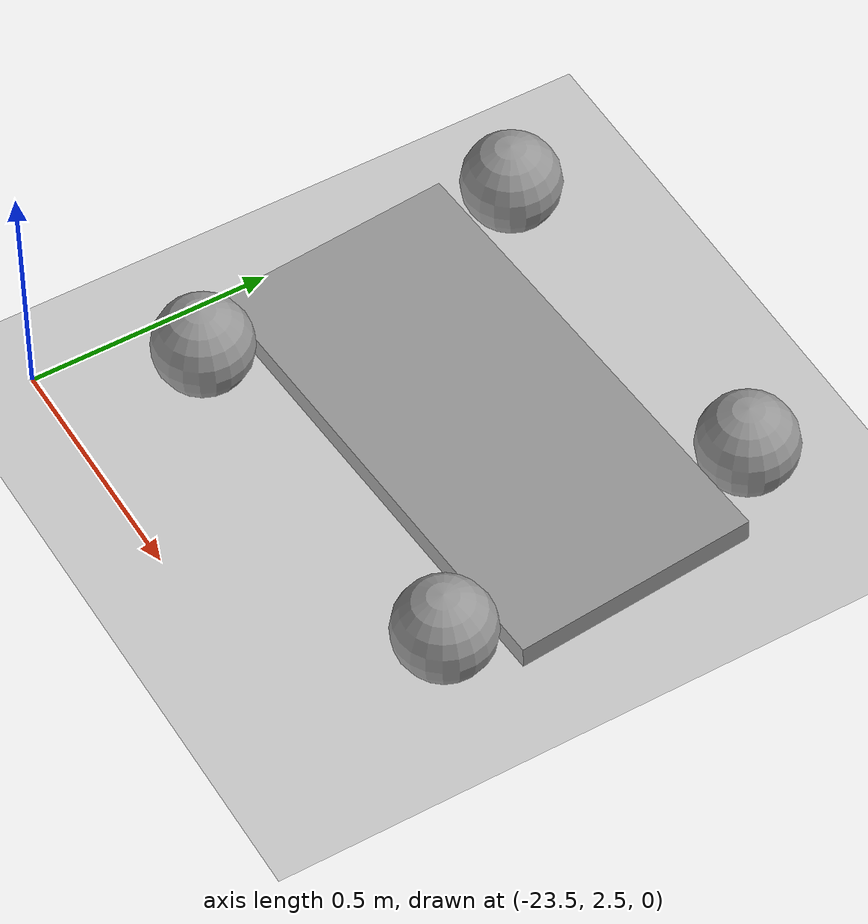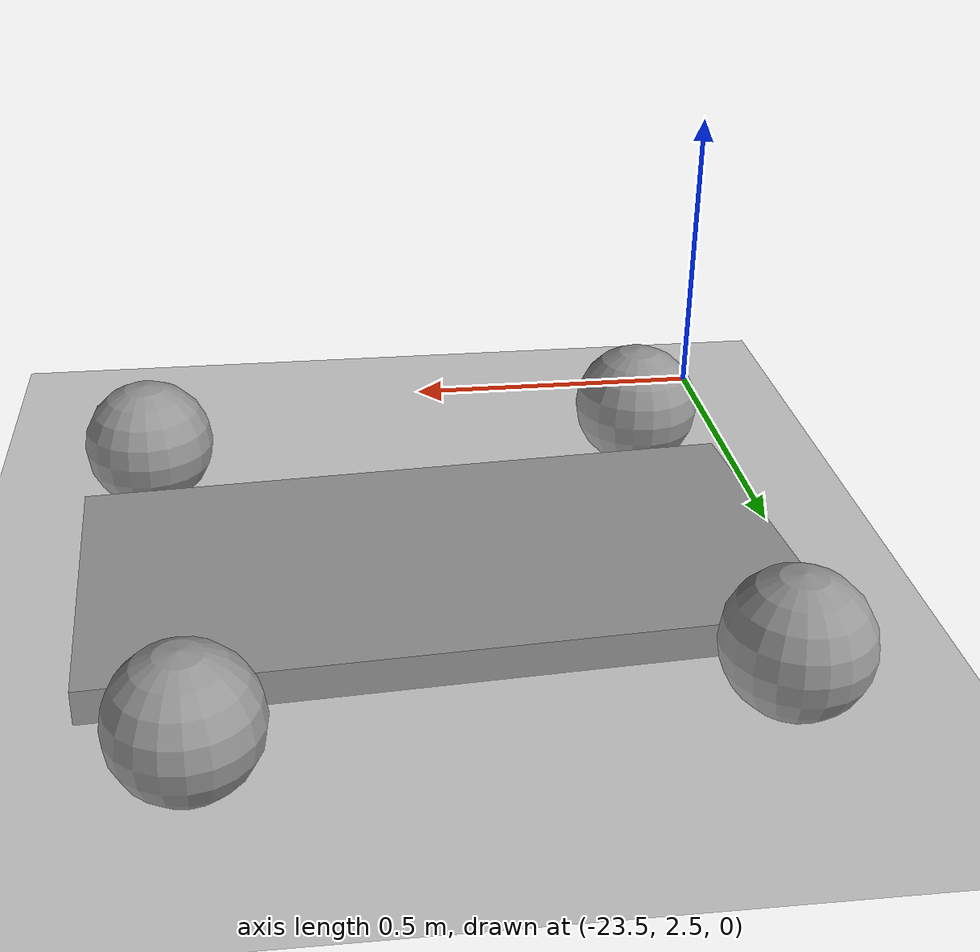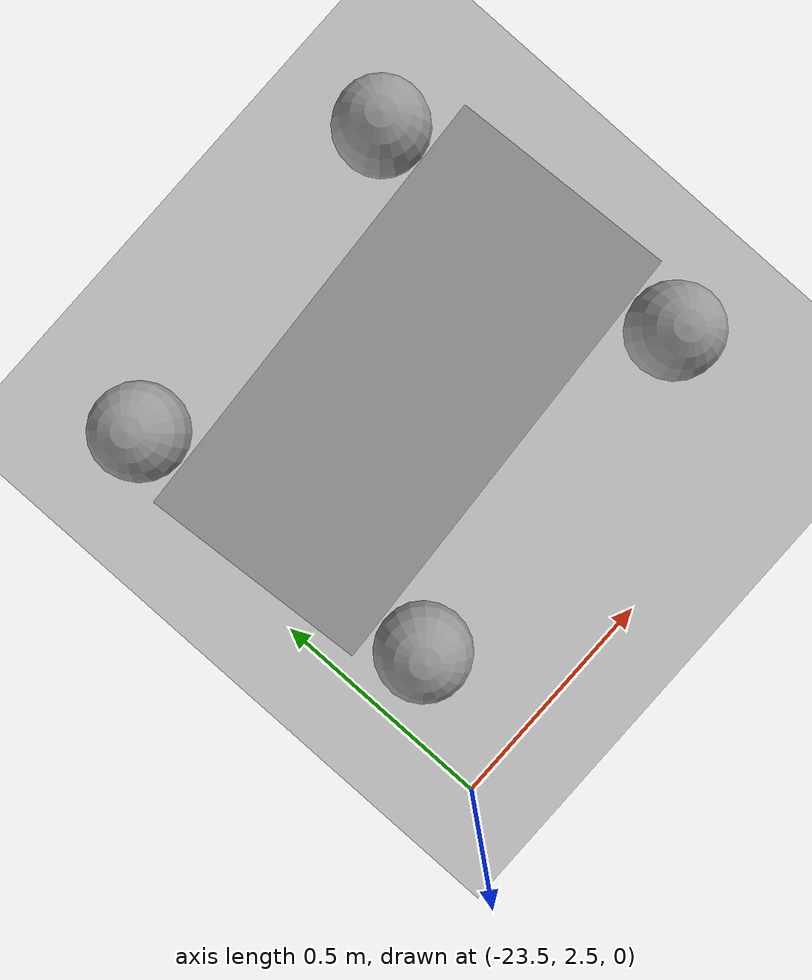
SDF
<sdf version="1.6">
 <world name="default">
  <model name="ground_plane">
   <static>1</static>
   <link name="link">
    <collision name="collision">
     <geometry><plane><normal>0 0 1</normal><size>100 100</size></plane></geometry>
     <surface>
      <contact><collide_bitmask>65535</collide_bitmask></contact>
      <friction><ode><mu>100</mu><mu2>50</mu2></ode></friction>
     </surface>
    </collision>
    <visual name="visual">
     <cast_shadows>0</cast_shadows>
     <geometry><plane><normal>0 0 1</normal><size>100 100</size></plane></geometry>
     <material>
      <script><uri>file://media/materials/scripts/gazebo.material</uri><name>Gazebo/Grey</name></script>
     </material>
    </visual>
   </link>
  </model>
  <model name="funkybot">
   <link name="link_0">
    <pose>0.008 0 -0.042 0 -0 0</pose>
    <inertial>
     <mass>1</mass>
     <inertia>
      <ixx>0.166667</ixx>
      <ixy>0</ixy>
      <ixz>0</ixz>
      <iyy>0.166667</iyy>
      <iyz>0</iyz>
      <izz>0.166667</izz>
     </inertia>
    </inertial>
    <visual name="visual">
     <geometry><box><size>1 0.5 0.05</size></box></geometry>
     <material>
      <lighting>1</lighting>
      <script><uri>file://media/materials/scripts/gazebo.material</uri><name>Gazebo/Grey</name></script>
      <shader type="pixel"><normal_map>__default__</normal_map></shader>
      <ambient>0.3 0.3 0.3 1</ambient>
      <diffuse>0.7 0.7 0.7 1</diffuse>
      <specular>0.01 0.01 0.01 1</specular>
      <emissive>0 0 0 1</emissive>
     </material>
    </visual>
    <collision name="collision">
     <geometry><box><size>1 0.5 0.05</size></box></geometry>
     <surface>
      <friction>
       <ode><mu>1</mu><mu2>1</mu2><fdir1>0 0 0</fdir1><slip1>0</slip1><slip2>0</slip2></ode>
       <torsional>
        <coefficient>1</coefficient>
        <patch_radius>0</patch_radius>
        <surface_radius>0</surface_radius>
        <use_patch_radius>1</use_patch_radius>
        <ode><slip>0</slip></ode>
       </torsional>
      </friction>
      <bounce><restitution_coefficient>0</restitution_coefficient><threshold>1e+06</threshold></bounce>
      <contact>
       <collide_without_contact>0</collide_without_contact>
       <collide_without_contact_bitmask>1</collide_without_contact_bitmask>
       <collide_bitmask>1</collide_bitmask>
       <ode>
        <soft_cfm>0</soft_cfm>
        <soft_erp>0.2</soft_erp>
        <kp>1e+13</kp>
        <kd>1</kd>
        <max_vel>0.01</max_vel>
        <min_depth>0</min_depth>
       </ode>
       <bullet>
        <split_impulse>1</split_impulse>
        <split_impulse_penetration_threshold>-0.01</split_impulse_penetration_threshold>
        <soft_cfm>0</soft_cfm>
        <soft_erp>0.2</soft_erp>
        <kp>1e+13</kp>
        <kd>1</kd>
       </bullet>
      </contact>
     </surface>
    </collision>
   </link>
   <link name="link_2">
    <pose>0.368 0.35 -0.0045 0 -0 0</pose>
    <inertial>
     <mass>1</mass>
     <inertia><ixx>0.1</ixx><ixy>0</ixy><ixz>0</ixz><iyy>0.1</iyy><iyz>0</iyz><izz>0.1</izz></inertia>
    </inertial>
    <visual name="visual">
     <geometry><sphere><radius>0.1</radius></sphere></geometry>
     <material>
      <lighting>1</lighting>
      <script><uri>file://media/materials/scripts/gazebo.material</uri><name>Gazebo/Grey</name></script>
      <shader type="pixel"><normal_map>__default__</normal_map></shader>
      <ambient>0.3 0.3 0.3 1</ambient>
      <diffuse>0.7 0.7 0.7 1</diffuse>
      <specular>0.01 0.01 0.01 1</specular>
      <emissive>0 0 0 1</emissive>
     </material>
    </visual>
    <collision name="collision">
     <geometry><sphere><radius>0.1</radius></sphere></geometry>
     <surface>
      <friction>
       <ode><mu>1</mu><mu2>1</mu2><fdir1>0 0 0</fdir1><slip1>0</slip1><slip2>0</slip2></ode>
       <torsional>
        <coefficient>1</coefficient>
        <patch_radius>0</patch_radius>
        <surface_radius>0</surface_radius>
        <use_patch_radius>1</use_patch_radius>
        <ode><slip>0</slip></ode>
       </torsional>
      </friction>
      <bounce><restitution_coefficient>0</restitution_coefficient><threshold>1e+06</threshold></bounce>
      <contact>
       <collide_without_contact>0</collide_without_contact>
       <collide_without_contact_bitmask>1</collide_without_contact_bitmask>
       <collide_bitmask>1</collide_bitmask>
       <ode>
        <soft_cfm>0</soft_cfm>
        <soft_erp>0.2</soft_erp>
        <kp>1e+13</kp>
        <kd>1</kd>
        <max_vel>0.01</max_vel>
        <min_depth>0</min_depth>
       </ode>
       <bullet>
        <split_impulse>1</split_impulse>
        <split_impulse_penetration_threshold>-0.01</split_impulse_penetration_threshold>
        <soft_cfm>0</soft_cfm>
        <soft_erp>0.2</soft_erp>
        <kp>1e+13</kp>
        <kd>1</kd>
       </bullet>
      </contact>
     </surface>
    </collision>
   </link>
   <link name="link_2_clone">
    <pose>-0.392 0.35 0.0155 0 -0 0</pose>
    <inertial>
     <mass>1</mass>
     <inertia><ixx>0.1</ixx><ixy>0</ixy><ixz>0</ixz><iyy>0.1</iyy><iyz>0</iyz><izz>0.1</izz></inertia>
    </inertial>
    <visual name="visual">
     <geometry><sphere><radius>0.1</radius></sphere></geometry>
     <material>
      <lighting>1</lighting>
      <script><uri>file://media/materials/scripts/gazebo.material</uri><name>Gazebo/Grey</name></script>
      <shader type="pixel"><normal_map>__default__</normal_map></shader>
      <ambient>0.3 0.3 0.3 1</ambient>
      <diffuse>0.7 0.7 0.7 1</diffuse>
      <specular>0.01 0.01 0.01 1</specular>
      <emissive>0 0 0 1</emissive>
     </material>
    </visual>
    <collision name="collision">
     <geometry><sphere><radius>0.1</radius></sphere></geometry>
     <surface>
      <friction>
       <ode><mu>1</mu><mu2>1</mu2><fdir1>0 0 0</fdir1><slip1>0</slip1><slip2>0</slip2></ode>
       <torsional>
        <coefficient>1</coefficient>
        <patch_radius>0</patch_radius>
        <surface_radius>0</surface_radius>
        <use_patch_radius>1</use_patch_radius>
        <ode><slip>0</slip></ode>
       </torsional>
      </friction>
      <bounce><restitution_coefficient>0</restitution_coefficient><threshold>1e+06</threshold></bounce>
      <contact>
       <collide_without_contact>0</collide_without_contact>
       <collide_without_contact_bitmask>1</collide_without_contact_bitmask>
       <collide_bitmask>1</collide_bitmask>
       <ode>
        <soft_cfm>0</soft_cfm>
        <soft_erp>0.2</soft_erp>
        <kp>1e+13</kp>
        <kd>1</kd>
        <max_vel>0.01</max_vel>
        <min_depth>0</min_depth>
       </ode>
       <bullet>
        <split_impulse>1</split_impulse>
        <split_impulse_penetration_threshold>-0.01</split_impulse_penetration_threshold>
        <soft_cfm>0</soft_cfm>
        <soft_erp>0.2</soft_erp>
        <kp>1e+13</kp>
        <kd>1</kd>
       </bullet>
      </contact>
     </surface>
    </collision>
   </link>
   <link name="link_2_clone_0">
    <pose>-0.392 -0.35 0.0155 0 -0 0</pose>
    <inertial>
     <mass>1</mass>
     <inertia><ixx>0.1</ixx><ixy>0</ixy><ixz>0</ixz><iyy>0.1</iyy><iyz>0</iyz><izz>0.1</izz></inertia>
    </inertial>
    <visual name="visual">
     <geometry><sphere><radius>0.1</radius></sphere></geometry>
     <material>
      <lighting>1</lighting>
      <script><uri>file://media/materials/scripts/gazebo.material</uri><name>Gazebo/Grey</name></script>
      <shader type="pixel"><normal_map>__default__</normal_map></shader>
      <ambient>0.3 0.3 0.3 1</ambient>
      <diffuse>0.7 0.7 0.7 1</diffuse>
      <specular>0.01 0.01 0.01 1</specular>
      <emissive>0 0 0 1</emissive>
     </material>
    </visual>
    <collision name="collision">
     <geometry><sphere><radius>0.1</radius></sphere></geometry>
     <surface>
      <friction>
       <ode><mu>1</mu><mu2>1</mu2><fdir1>0 0 0</fdir1><slip1>0</slip1><slip2>0</slip2></ode>
       <torsional>
        <coefficient>1</coefficient>
        <patch_radius>0</patch_radius>
        <surface_radius>0</surface_radius>
        <use_patch_radius>1</use_patch_radius>
        <ode><slip>0</slip></ode>
       </torsional>
      </friction>
      <bounce><restitution_coefficient>0</restitution_coefficient><threshold>1e+06</threshold></bounce>
      <contact>
       <collide_without_contact>0</collide_without_contact>
       <collide_without_contact_bitmask>1</collide_without_contact_bitmask>
       <collide_bitmask>1</collide_bitmask>
       <ode>
        <soft_cfm>0</soft_cfm>
        <soft_erp>0.2</soft_erp>
        <kp>1e+13</kp>
        <kd>1</kd>
        <max_vel>0.01</max_vel>
        <min_depth>0</min_depth>
       </ode>
       <bullet>
        <split_impulse>1</split_impulse>
        <split_impulse_penetration_threshold>-0.01</split_impulse_penetration_threshold>
        <soft_cfm>0</soft_cfm>
        <soft_erp>0.2</soft_erp>
        <kp>1e+13</kp>
        <kd>1</kd>
       </bullet>
      </contact>
     </surface>
    </collision>
   </link>
   <link name="link_2_clone_1">
    <pose>0.408 -0.35 0.0155 0 -0 0</pose>
    <inertial>
     <mass>1</mass>
     <inertia><ixx>0.1</ixx><ixy>0</ixy><ixz>0</ixz><iyy>0.1</iyy><iyz>0</iyz><izz>0.1</izz></inertia>
    </inertial>
    <visual name="visual">
     <geometry><sphere><radius>0.1</radius></sphere></geometry>
     <material>
      <lighting>1</lighting>
      <script><uri>file://media/materials/scripts/gazebo.material</uri><name>Gazebo/Grey</name></script>
      <shader type="pixel"><normal_map>__default__</normal_map></shader>
      <ambient>0.3 0.3 0.3 1</ambient>
      <diffuse>0.7 0.7 0.7 1</diffuse>
      <specular>0.01 0.01 0.01 1</specular>
      <emissive>0 0 0 1</emissive>
     </material>
    </visual>
    <collision name="collision">
     <geometry><sphere><radius>0.1</radius></sphere></geometry>
     <surface>
      <friction>
       <ode><mu>1</mu><mu2>1</mu2><fdir1>0 0 0</fdir1><slip1>0</slip1><slip2>0</slip2></ode>
       <torsional>
        <coefficient>1</coefficient>
        <patch_radius>0</patch_radius>
        <surface_radius>0</surface_radius>
        <use_patch_radius>1</use_patch_radius>
        <ode><slip>0</slip></ode>
       </torsional>
      </friction>
      <bounce><restitution_coefficient>0</restitution_coefficient><threshold>1e+06</threshold></bounce>
      <contact>
       <collide_without_contact>0</collide_without_contact>
       <collide_without_contact_bitmask>1</collide_without_contact_bitmask>
       <collide_bitmask>1</collide_bitmask>
       <ode>
        <soft_cfm>0</soft_cfm>
        <soft_erp>0.2</soft_erp>
        <kp>1e+13</kp>
        <kd>1</kd>
        <max_vel>0.01</max_vel>
        <min_depth>0</min_depth>
       </ode>
       <bullet>
        <split_impulse>1</split_impulse>
        <split_impulse_penetration_threshold>-0.01</split_impulse_penetration_threshold>
        <soft_cfm>0</soft_cfm>
        <soft_erp>0.2</soft_erp>
        <kp>1e+13</kp>
        <kd>1</kd>
       </bullet>
      </contact>
     </surface>
    </collision>
   </link>
   <joint name="link_0_JOINT_0" type="revolute">
    <parent>link_0</parent>
    <child>link_2_clone_1</child>
    <axis>
     <xyz>0 1 0</xyz>
     <use_parent_model_frame>0</use_parent_model_frame>
     <limit>
      <lower>-1.79769e+308</lower>
      <upper>1.79769e+308</upper>
      <effort>-1</effort>
      <velocity>-1</velocity>
     </limit>
     <dynamics>
      <spring_reference>0</spring_reference>
      <spring_stiffness>0</spring_stiffness>
      <damping>0</damping>
     </dynamics>
    </axis>
    <physics>
     <ode><limit><cfm>0</cfm><erp>0.2</erp></limit><suspension><cfm>0</cfm><erp>0.2</erp></suspension></ode>
    </physics>
   </joint>
   <joint name="link_0_JOINT_1" type="revolute">
    <parent>link_0</parent>
    <child>link_2_clone_0</child>
    <axis>
     <xyz>0 1 0</xyz>
     <use_parent_model_frame>0</use_parent_model_frame>
     <limit>
      <lower>-1.79769e+308</lower>
      <upper>1.79769e+308</upper>
      <effort>-1</effort>
      <velocity>-1</velocity>
     </limit>
     <dynamics>
      <spring_reference>0</spring_reference>
      <spring_stiffness>0</spring_stiffness>
      <damping>0</damping>
     </dynamics>
    </axis>
    <physics>
     <ode><limit><cfm>0</cfm><erp>0.2</erp></limit><suspension><cfm>0</cfm><erp>0.2</erp></suspension></ode>
    </physics>
   </joint>
   <joint name="link_0_JOINT_2" type="revolute">
    <parent>link_0</parent>
    <child>link_2_clone</child>
    <axis>
     <xyz>0 0 1</xyz>
     <use_parent_model_frame>0</use_parent_model_frame>
     <limit>
      <lower>-1.79769e+308</lower>
      <upper>1.79769e+308</upper>
      <effort>-1</effort>
      <velocity>-1</velocity>
     </limit>
     <dynamics>
      <spring_reference>0</spring_reference>
      <spring_stiffness>0</spring_stiffness>
      <damping>0</damping>
     </dynamics>
    </axis>
    <physics>
     <ode><limit><cfm>0</cfm><erp>0.2</erp></limit><suspension><cfm>0</cfm><erp>0.2</erp></suspension></ode>
    </physics>
   </joint>
   <joint name="link_0_JOINT_4" type="revolute">
    <parent>link_0</parent>
    <child>link_2</child>
    <axis>
     <xyz>1 0 0</xyz>
     <use_parent_model_frame>0</use_parent_model_frame>
     <limit>
      <lower>-1.79769e+308</lower>
      <upper>1.79769e+308</upper>
      <effort>-1</effort>
      <velocity>-1</velocity>
     </limit>
     <dynamics>
      <spring_reference>0</spring_reference>
      <spring_stiffness>0</spring_stiffness>
      <damping>0</damping>
     </dynamics>
    </axis>
    <physics>
     <ode><limit><cfm>0</cfm><erp>0.2</erp></limit><suspension><cfm>0</cfm><erp>0.2</erp></suspension></ode>
    </physics>
   </joint>
   <static>0</static>
   <pose>-22.9667 3.15343 0.094502 0.028558 -5e-06 0.061196</pose>
  </model>
 </world>
</sdf>
